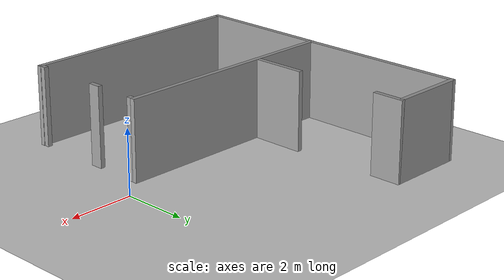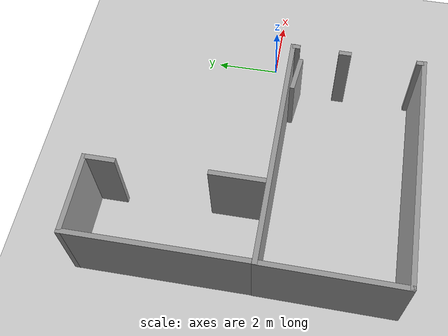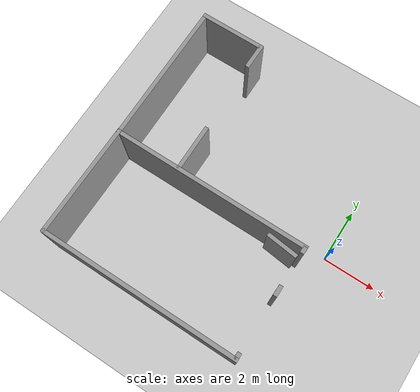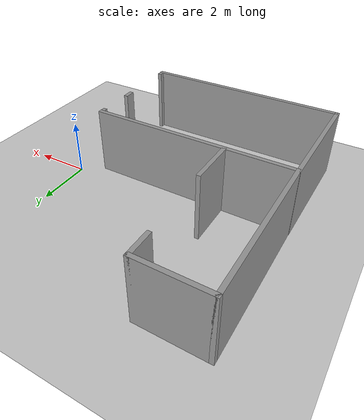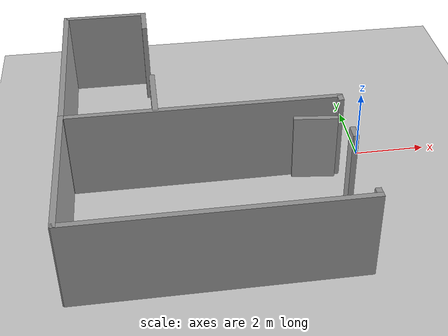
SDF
<sdf version="1.7">
 <world name="default">
  <model name="ground_plane">
   <static>1</static>
   <link name="link">
    <collision name="collision">
     <geometry><plane><normal>0 0 1</normal><size>100 100</size></plane></geometry>
     <surface>
      <contact><collide_bitmask>65535</collide_bitmask></contact>
      <friction><ode><mu>100</mu><mu2>50</mu2></ode></friction>
     </surface>
    </collision>
    <visual name="visual">
     <cast_shadows>0</cast_shadows>
     <geometry><plane><normal>0 0 1</normal><size>100 100</size></plane></geometry>
     <material>
      <script><uri>file://media/materials/scripts/gazebo.material</uri><name>Gazebo/Grey</name></script>
     </material>
    </visual>
   </link>
  </model>
  <model name="demo_clean">
   <link name="Wall_0">
    <pose>-8.14649 2.06618 0 0 0 -1.5708</pose>
    <visual name="Wall_0_Visual">
     <pose>0 0 1.25 0 -0 0</pose>
     <geometry><box><size>5.5 0.15 2.5</size></box></geometry>
     <material>
      <script><uri>file://media/materials/scripts/gazebo.material</uri><name>Gazebo/Grey</name></script>
      <ambient>1 1 1 1</ambient>
      <shader type="pixel"/>
     </material>
     <meta><layer>0</layer></meta>
    </visual>
    <collision name="Wall_0_Collision">
     <pose>0 0 1.25 0 -0 0</pose>
     <geometry><box><size>5.5 0.15 2.5</size></box></geometry>
     <surface>
      <friction>
       <ode><mu>1</mu><mu2>1</mu2><fdir1>0 0 0</fdir1><slip1>0</slip1><slip2>0</slip2></ode>
       <torsional>
        <coefficient>1</coefficient>
        <patch_radius>0</patch_radius>
        <surface_radius>0</surface_radius>
        <use_patch_radius>1</use_patch_radius>
        <ode><slip>0</slip></ode>
       </torsional>
      </friction>
      <bounce><restitution_coefficient>0</restitution_coefficient><threshold>1e+06</threshold></bounce>
      <contact>
       <collide_without_contact>0</collide_without_contact>
       <collide_without_contact_bitmask>1</collide_without_contact_bitmask>
       <collide_bitmask>1</collide_bitmask>
       <ode>
        <soft_cfm>0</soft_cfm>
        <soft_erp>0.2</soft_erp>
        <kp>1e+13</kp>
        <kd>1</kd>
        <max_vel>0.01</max_vel>
        <min_depth>0</min_depth>
       </ode>
       <bullet>
        <split_impulse>1</split_impulse>
        <split_impulse_penetration_threshold>-0.01</split_impulse_penetration_threshold>
        <soft_cfm>0</soft_cfm>
        <soft_erp>0.2</soft_erp>
        <kp>1e+13</kp>
        <kd>1</kd>
       </bullet>
      </contact>
     </surface>
    </collision>
   </link>
   <link name="Wall_1">
    <pose>-8.17617 -2.66151 0 0 0 -1.58051</pose>
    <visual name="Wall_1_Visual">
     <pose>0 0 1.25 0 -0 0</pose>
     <geometry><box><size>4.27044 0.15 2.5</size></box></geometry>
     <material>
      <script><uri>file://media/materials/scripts/gazebo.material</uri><name>Gazebo/Grey</name></script>
      <ambient>1 1 1 1</ambient>
      <shader type="pixel"/>
     </material>
     <meta><layer>0</layer></meta>
    </visual>
    <collision name="Wall_1_Collision">
     <pose>0 0 1.25 0 -0 0</pose>
     <geometry><box><size>4.27044 0.15 2.5</size></box></geometry>
     <surface>
      <friction>
       <ode><mu>1</mu><mu2>1</mu2><fdir1>0 0 0</fdir1><slip1>0</slip1><slip2>0</slip2></ode>
       <torsional>
        <coefficient>1</coefficient>
        <patch_radius>0</patch_radius>
        <surface_radius>0</surface_radius>
        <use_patch_radius>1</use_patch_radius>
        <ode><slip>0</slip></ode>
       </torsional>
      </friction>
      <bounce><restitution_coefficient>0</restitution_coefficient><threshold>1e+06</threshold></bounce>
      <contact>
       <collide_without_contact>0</collide_without_contact>
       <collide_without_contact_bitmask>1</collide_without_contact_bitmask>
       <collide_bitmask>1</collide_bitmask>
       <ode>
        <soft_cfm>0</soft_cfm>
        <soft_erp>0.2</soft_erp>
        <kp>1e+13</kp>
        <kd>1</kd>
        <max_vel>0.01</max_vel>
        <min_depth>0</min_depth>
       </ode>
       <bullet>
        <split_impulse>1</split_impulse>
        <split_impulse_penetration_threshold>-0.01</split_impulse_penetration_threshold>
        <soft_cfm>0</soft_cfm>
        <soft_erp>0.2</soft_erp>
        <kp>1e+13</kp>
        <kd>1</kd>
       </bullet>
      </contact>
     </surface>
    </collision>
   </link>
   <link name="Wall_2">
    <pose>-4.49149 -4.74 0 0 -0 0</pose>
    <visual name="Wall_2_Visual">
     <pose>0 0 1.25 0 -0 0</pose>
     <geometry><box><size>7.5 0.15 2.5</size></box></geometry>
     <material>
      <script><uri>file://media/materials/scripts/gazebo.material</uri><name>Gazebo/Grey</name></script>
      <ambient>1 1 1 1</ambient>
      <shader type="pixel"/>
     </material>
     <meta><layer>0</layer></meta>
    </visual>
    <collision name="Wall_2_Collision">
     <pose>0 0 1.25 0 -0 0</pose>
     <geometry><box><size>7.5 0.15 2.5</size></box></geometry>
     <surface>
      <friction>
       <ode><mu>1</mu><mu2>1</mu2><fdir1>0 0 0</fdir1><slip1>0</slip1><slip2>0</slip2></ode>
       <torsional>
        <coefficient>1</coefficient>
        <patch_radius>0</patch_radius>
        <surface_radius>0</surface_radius>
        <use_patch_radius>1</use_patch_radius>
        <ode><slip>0</slip></ode>
       </torsional>
      </friction>
      <bounce><restitution_coefficient>0</restitution_coefficient><threshold>1e+06</threshold></bounce>
      <contact>
       <collide_without_contact>0</collide_without_contact>
       <collide_without_contact_bitmask>1</collide_without_contact_bitmask>
       <collide_bitmask>1</collide_bitmask>
       <ode>
        <soft_cfm>0</soft_cfm>
        <soft_erp>0.2</soft_erp>
        <kp>1e+13</kp>
        <kd>1</kd>
        <max_vel>0.01</max_vel>
        <min_depth>0</min_depth>
       </ode>
       <bullet>
        <split_impulse>1</split_impulse>
        <split_impulse_penetration_threshold>-0.01</split_impulse_penetration_threshold>
        <soft_cfm>0</soft_cfm>
        <soft_erp>0.2</soft_erp>
        <kp>1e+13</kp>
        <kd>1</kd>
       </bullet>
      </contact>
     </surface>
    </collision>
   </link>
   <link name="Wall_21_clone">
    <pose>-0.802658 -0.717313 0 0 0 -1.5708</pose>
    <inertial>
     <inertia><ixx>0</ixx><ixy>0</ixy><ixz>0</ixz><iyy>0</iyy><iyz>0</iyz><izz>0</izz></inertia>
     <mass>0</mass>
    </inertial>
    <visual name="Wall_21_Visual">
     <pose>0 0 1.25 0 -0 0</pose>
     <geometry><box><size>0.240964 0.15 2.5</size></box></geometry>
     <material>
      <script><uri>file://media/materials/scripts/gazebo.material</uri><name>Gazebo/Grey</name></script>
      <ambient>1 1 1 1</ambient>
      <shader type="pixel"/>
     </material>
     <meta><layer>0</layer></meta>
    </visual>
    <collision name="Wall_21_Collision">
     <pose>0 0 1.25 0 -0 0</pose>
     <geometry><box><size>0.240964 0.15 2.5</size></box></geometry>
     <surface>
      <friction>
       <ode><mu>1</mu><mu2>1</mu2><fdir1>0 0 0</fdir1><slip1>0</slip1><slip2>0</slip2></ode>
       <torsional>
        <coefficient>1</coefficient>
        <patch_radius>0</patch_radius>
        <surface_radius>0</surface_radius>
        <use_patch_radius>1</use_patch_radius>
        <ode><slip>0</slip></ode>
       </torsional>
      </friction>
      <bounce><restitution_coefficient>0</restitution_coefficient><threshold>1e+06</threshold></bounce>
      <contact>
       <collide_without_contact>0</collide_without_contact>
       <collide_without_contact_bitmask>1</collide_without_contact_bitmask>
       <collide_bitmask>1</collide_bitmask>
       <ode>
        <soft_cfm>0</soft_cfm>
        <soft_erp>0.2</soft_erp>
        <kp>1e+13</kp>
        <kd>1</kd>
        <max_vel>0.01</max_vel>
        <min_depth>0</min_depth>
       </ode>
       <bullet>
        <split_impulse>1</split_impulse>
        <split_impulse_penetration_threshold>-0.01</split_impulse_penetration_threshold>
        <soft_cfm>0</soft_cfm>
        <soft_erp>0.2</soft_erp>
        <kp>1e+13</kp>
        <kd>1</kd>
       </bullet>
      </contact>
     </surface>
    </collision>
   </link>
   <link name="Wall_21_clone_0">
    <pose>-0.820336 -2.26773 0 0 0 -1.5708</pose>
    <inertial>
     <inertia><ixx>0</ixx><ixy>0</ixy><ixz>0</ixz><iyy>0</iyy><iyz>0</iyz><izz>0</izz></inertia>
     <mass>0</mass>
    </inertial>
    <visual name="Wall_21_Visual">
     <pose>0 0 1.25 0 -0 0</pose>
     <geometry><box><size>0.394105 0.15 2.5</size></box></geometry>
     <material>
      <script><uri>file://media/materials/scripts/gazebo.material</uri><name>Gazebo/Grey</name></script>
      <ambient>1 1 1 1</ambient>
      <shader type="pixel"/>
     </material>
     <meta><layer>0</layer></meta>
    </visual>
    <collision name="Wall_21_Collision">
     <pose>0 0 1.25 0 -0 0</pose>
     <geometry><box><size>0.394105 0.15 2.5</size></box></geometry>
     <surface>
      <friction>
       <ode><mu>1</mu><mu2>1</mu2><fdir1>0 0 0</fdir1><slip1>0</slip1><slip2>0</slip2></ode>
       <torsional>
        <coefficient>1</coefficient>
        <patch_radius>0</patch_radius>
        <surface_radius>0</surface_radius>
        <use_patch_radius>1</use_patch_radius>
        <ode><slip>0</slip></ode>
       </torsional>
      </friction>
      <bounce><restitution_coefficient>0</restitution_coefficient><threshold>1e+06</threshold></bounce>
      <contact>
       <collide_without_contact>0</collide_without_contact>
       <collide_without_contact_bitmask>1</collide_without_contact_bitmask>
       <collide_bitmask>1</collide_bitmask>
       <ode>
        <soft_cfm>0</soft_cfm>
        <soft_erp>0.2</soft_erp>
        <kp>1e+13</kp>
        <kd>1</kd>
        <max_vel>0.01</max_vel>
        <min_depth>0</min_depth>
       </ode>
       <bullet>
        <split_impulse>1</split_impulse>
        <split_impulse_penetration_threshold>-0.01</split_impulse_penetration_threshold>
        <soft_cfm>0</soft_cfm>
        <soft_erp>0.2</soft_erp>
        <kp>1e+13</kp>
        <kd>1</kd>
       </bullet>
      </contact>
     </surface>
    </collision>
   </link>
   <link name="Wall_21_clone_0_clone_0_clone_clone">
    <pose>-1.47342 -0.839052 -0.23202 0 -0 3.0297</pose>
    <inertial>
     <inertia><ixx>0</ixx><ixy>0</ixy><ixz>0</ixz><iyy>0</iyy><iyz>0</iyz><izz>0</izz></inertia>
     <mass>0</mass>
    </inertial>
    <gravity>0</gravity>
    <visual name="Wall_21_Visual">
     <pose>0 0 1.25 0 -0 0</pose>
     <geometry><box><size>1.1941 0.15 1.96033</size></box></geometry>
     <material>
      <script><uri>file://media/materials/scripts/gazebo.material</uri><name>Gazebo/Grey</name></script>
      <ambient>1 1 1 1</ambient>
      <shader type="pixel"><normal_map>__default__</normal_map></shader>
      <diffuse>0.7 0.7 0.7 1</diffuse>
      <specular>0.01 0.01 0.01 1</specular>
      <emissive>0 0 0 1</emissive>
     </material>
     <meta><layer>0</layer></meta>
    </visual>
    <collision name="Wall_21_Collision">
     <pose>0 0 1.25 0 -0 0</pose>
     <geometry><box><size>1.1941 0.15 1.96033</size></box></geometry>
     <surface>
      <friction>
       <ode><mu>1</mu><mu2>1</mu2><fdir1>0 0 0</fdir1><slip1>0</slip1><slip2>0</slip2></ode>
       <torsional>
        <coefficient>1</coefficient>
        <patch_radius>0</patch_radius>
        <surface_radius>0</surface_radius>
        <use_patch_radius>1</use_patch_radius>
        <ode><slip>0</slip></ode>
       </torsional>
      </friction>
      <bounce><restitution_coefficient>0</restitution_coefficient><threshold>1e+06</threshold></bounce>
      <contact>
       <collide_without_contact>0</collide_without_contact>
       <collide_without_contact_bitmask>1</collide_without_contact_bitmask>
       <collide_bitmask>1</collide_bitmask>
       <ode>
        <soft_cfm>0</soft_cfm>
        <soft_erp>0.2</soft_erp>
        <kp>1e+13</kp>
        <kd>1</kd>
        <max_vel>0.01</max_vel>
        <min_depth>0</min_depth>
       </ode>
       <bullet>
        <split_impulse>1</split_impulse>
        <split_impulse_penetration_threshold>-0.01</split_impulse_penetration_threshold>
        <soft_cfm>0</soft_cfm>
        <soft_erp>0.2</soft_erp>
        <kp>1e+13</kp>
        <kd>1</kd>
       </bullet>
      </contact>
     </surface>
    </collision>
   </link>
   <link name="Wall_21_clone_clone">
    <pose>-0.824993 -4.62184 0 0 0 -1.5708</pose>
    <inertial>
     <inertia><ixx>0</ixx><ixy>0</ixy><ixz>0</ixz><iyy>0</iyy><iyz>0</iyz><izz>0</izz></inertia>
     <mass>0</mass>
    </inertial>
    <visual name="Wall_21_Visual">
     <pose>0 0 1.25 0 -0 0</pose>
     <geometry><box><size>0.240964 0.15 2.5</size></box></geometry>
     <material>
      <script><uri>file://media/materials/scripts/gazebo.material</uri><name>Gazebo/Grey</name></script>
      <ambient>1 1 1 1</ambient>
      <shader type="pixel"/>
     </material>
     <meta><layer>0</layer></meta>
    </visual>
    <collision name="Wall_21_Collision">
     <pose>0 0 1.25 0 -0 0</pose>
     <geometry><box><size>0.240964 0.15 2.5</size></box></geometry>
     <surface>
      <friction>
       <ode><mu>1</mu><mu2>1</mu2><fdir1>0 0 0</fdir1><slip1>0</slip1><slip2>0</slip2></ode>
       <torsional>
        <coefficient>1</coefficient>
        <patch_radius>0</patch_radius>
        <surface_radius>0</surface_radius>
        <use_patch_radius>1</use_patch_radius>
        <ode><slip>0</slip></ode>
       </torsional>
      </friction>
      <bounce><restitution_coefficient>0</restitution_coefficient><threshold>1e+06</threshold></bounce>
      <contact>
       <collide_without_contact>0</collide_without_contact>
       <collide_without_contact_bitmask>1</collide_without_contact_bitmask>
       <collide_bitmask>1</collide_bitmask>
       <ode>
        <soft_cfm>0</soft_cfm>
        <soft_erp>0.2</soft_erp>
        <kp>1e+13</kp>
        <kd>1</kd>
        <max_vel>0.01</max_vel>
        <min_depth>0</min_depth>
       </ode>
       <bullet>
        <split_impulse>1</split_impulse>
        <split_impulse_penetration_threshold>-0.01</split_impulse_penetration_threshold>
        <soft_cfm>0</soft_cfm>
        <soft_erp>0.2</soft_erp>
        <kp>1e+13</kp>
        <kd>1</kd>
       </bullet>
      </contact>
     </surface>
    </collision>
   </link>
   <link name="Wall_4">
    <pose>-4.47149 -0.608824 0 0 -0 3.14159</pose>
    <visual name="Wall_4_Visual">
     <pose>0 0 1.25 0 -0 0</pose>
     <geometry><box><size>7.5 0.15 2.5</size></box></geometry>
     <material>
      <script><uri>file://media/materials/scripts/gazebo.material</uri><name>Gazebo/Grey</name></script>
      <ambient>1 1 1 1</ambient>
      <shader type="pixel"/>
     </material>
     <meta><layer>0</layer></meta>
    </visual>
    <collision name="Wall_4_Collision">
     <pose>0 0 1.25 0 -0 0</pose>
     <geometry><box><size>7.5 0.15 2.5</size></box></geometry>
     <surface>
      <friction>
       <ode><mu>1</mu><mu2>1</mu2><fdir1>0 0 0</fdir1><slip1>0</slip1><slip2>0</slip2></ode>
       <torsional>
        <coefficient>1</coefficient>
        <patch_radius>0</patch_radius>
        <surface_radius>0</surface_radius>
        <use_patch_radius>1</use_patch_radius>
        <ode><slip>0</slip></ode>
       </torsional>
      </friction>
      <bounce><restitution_coefficient>0</restitution_coefficient><threshold>1e+06</threshold></bounce>
      <contact>
       <collide_without_contact>0</collide_without_contact>
       <collide_without_contact_bitmask>1</collide_without_contact_bitmask>
       <collide_bitmask>1</collide_bitmask>
       <ode>
        <soft_cfm>0</soft_cfm>
        <soft_erp>0.2</soft_erp>
        <kp>1e+13</kp>
        <kd>1</kd>
        <max_vel>0.01</max_vel>
        <min_depth>0</min_depth>
       </ode>
       <bullet>
        <split_impulse>1</split_impulse>
        <split_impulse_penetration_threshold>-0.01</split_impulse_penetration_threshold>
        <soft_cfm>0</soft_cfm>
        <soft_erp>0.2</soft_erp>
        <kp>1e+13</kp>
        <kd>1</kd>
       </bullet>
      </contact>
     </surface>
    </collision>
   </link>
   <link name="Wall_44">
    <pose>-5.71903 0.262602 0 0 0 -1.5708</pose>
    <visual name="Wall_44_Visual">
     <pose>0 0 1.25 0 -0 0</pose>
     <geometry><box><size>1.75 0.15 2.5</size></box></geometry>
     <material>
      <script><uri>file://media/materials/scripts/gazebo.material</uri><name>Gazebo/Grey</name></script>
      <ambient>1 1 1 1</ambient>
      <shader type="pixel"/>
     </material>
     <meta><layer>0</layer></meta>
    </visual>
    <collision name="Wall_44_Collision">
     <pose>0 0 1.25 0 -0 0</pose>
     <geometry><box><size>1.75 0.15 2.5</size></box></geometry>
     <surface>
      <friction>
       <ode><mu>1</mu><mu2>1</mu2><fdir1>0 0 0</fdir1><slip1>0</slip1><slip2>0</slip2></ode>
       <torsional>
        <coefficient>1</coefficient>
        <patch_radius>0</patch_radius>
        <surface_radius>0</surface_radius>
        <use_patch_radius>1</use_patch_radius>
        <ode><slip>0</slip></ode>
       </torsional>
      </friction>
      <bounce><restitution_coefficient>0</restitution_coefficient><threshold>1e+06</threshold></bounce>
      <contact>
       <collide_without_contact>0</collide_without_contact>
       <collide_without_contact_bitmask>1</collide_without_contact_bitmask>
       <collide_bitmask>1</collide_bitmask>
       <ode>
        <soft_cfm>0</soft_cfm>
        <soft_erp>0.2</soft_erp>
        <kp>1e+13</kp>
        <kd>1</kd>
        <max_vel>0.01</max_vel>
        <min_depth>0</min_depth>
       </ode>
       <bullet>
        <split_impulse>1</split_impulse>
        <split_impulse_penetration_threshold>-0.01</split_impulse_penetration_threshold>
        <soft_cfm>0</soft_cfm>
        <soft_erp>0.2</soft_erp>
        <kp>1e+13</kp>
        <kd>1</kd>
       </bullet>
      </contact>
     </surface>
    </collision>
   </link>
   <link name="Wall_6">
    <pose>-6.97149 4.74118 0 0 -0 0</pose>
    <visual name="Wall_6_Visual">
     <pose>0 0 1.25 0 -0 0</pose>
     <geometry><box><size>2.5 0.15 2.5</size></box></geometry>
     <material>
      <script><uri>file://media/materials/scripts/gazebo.material</uri><name>Gazebo/Grey</name></script>
      <ambient>1 1 1 1</ambient>
      <shader type="pixel"/>
     </material>
     <meta><layer>0</layer></meta>
    </visual>
    <collision name="Wall_6_Collision">
     <pose>0 0 1.25 0 -0 0</pose>
     <geometry><box><size>2.5 0.15 2.5</size></box></geometry>
     <surface>
      <friction>
       <ode><mu>1</mu><mu2>1</mu2><fdir1>0 0 0</fdir1><slip1>0</slip1><slip2>0</slip2></ode>
       <torsional>
        <coefficient>1</coefficient>
        <patch_radius>0</patch_radius>
        <surface_radius>0</surface_radius>
        <use_patch_radius>1</use_patch_radius>
        <ode><slip>0</slip></ode>
       </torsional>
      </friction>
      <bounce><restitution_coefficient>0</restitution_coefficient><threshold>1e+06</threshold></bounce>
      <contact>
       <collide_without_contact>0</collide_without_contact>
       <collide_without_contact_bitmask>1</collide_without_contact_bitmask>
       <collide_bitmask>1</collide_bitmask>
       <ode>
        <soft_cfm>0</soft_cfm>
        <soft_erp>0.2</soft_erp>
        <kp>1e+13</kp>
        <kd>1</kd>
        <max_vel>0.01</max_vel>
        <min_depth>0</min_depth>
       </ode>
       <bullet>
        <split_impulse>1</split_impulse>
        <split_impulse_penetration_threshold>-0.01</split_impulse_penetration_threshold>
        <soft_cfm>0</soft_cfm>
        <soft_erp>0.2</soft_erp>
        <kp>1e+13</kp>
        <kd>1</kd>
       </bullet>
      </contact>
     </surface>
    </collision>
   </link>
   <link name="Wall_7">
    <pose>-5.79649 4.31618 0 0 0 -1.5708</pose>
    <visual name="Wall_7_Visual">
     <pose>0 0 1.25 0 -0 0</pose>
     <geometry><box><size>1 0.15 2.5</size></box></geometry>
     <material>
      <script><uri>file://media/materials/scripts/gazebo.material</uri><name>Gazebo/Grey</name></script>
      <ambient>1 1 1 1</ambient>
      <shader type="pixel"/>
     </material>
     <meta><layer>0</layer></meta>
    </visual>
    <collision name="Wall_7_Collision">
     <pose>0 0 1.25 0 -0 0</pose>
     <geometry><box><size>1 0.15 2.5</size></box></geometry>
     <surface>
      <friction>
       <ode><mu>1</mu><mu2>1</mu2><fdir1>0 0 0</fdir1><slip1>0</slip1><slip2>0</slip2></ode>
       <torsional>
        <coefficient>1</coefficient>
        <patch_radius>0</patch_radius>
        <surface_radius>0</surface_radius>
        <use_patch_radius>1</use_patch_radius>
        <ode><slip>0</slip></ode>
       </torsional>
      </friction>
      <bounce><restitution_coefficient>0</restitution_coefficient><threshold>1e+06</threshold></bounce>
      <contact>
       <collide_without_contact>0</collide_without_contact>
       <collide_without_contact_bitmask>1</collide_without_contact_bitmask>
       <collide_bitmask>1</collide_bitmask>
       <ode>
        <soft_cfm>0</soft_cfm>
        <soft_erp>0.2</soft_erp>
        <kp>1e+13</kp>
        <kd>1</kd>
        <max_vel>0.01</max_vel>
        <min_depth>0</min_depth>
       </ode>
       <bullet>
        <split_impulse>1</split_impulse>
        <split_impulse_penetration_threshold>-0.01</split_impulse_penetration_threshold>
        <soft_cfm>0</soft_cfm>
        <soft_erp>0.2</soft_erp>
        <kp>1e+13</kp>
        <kd>1</kd>
       </bullet>
      </contact>
     </surface>
    </collision>
   </link>
   <static>1</static>
  </model>
 </world>
</sdf>
